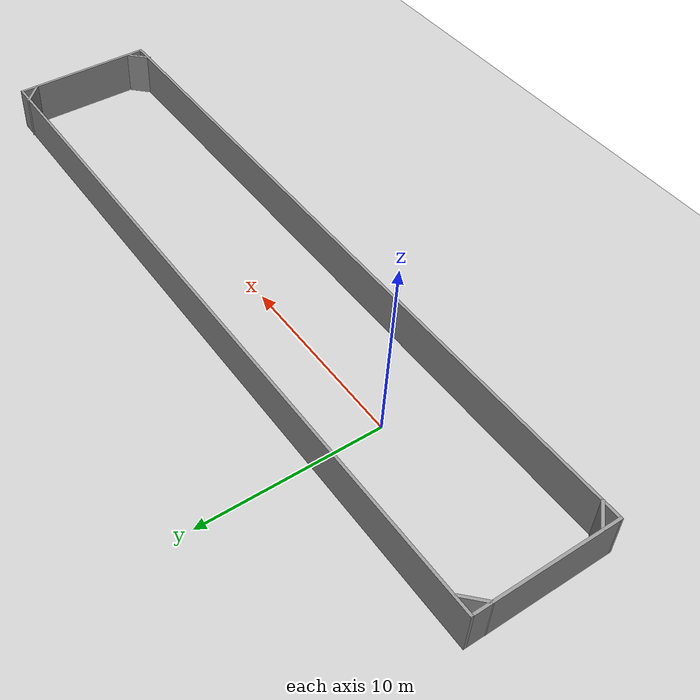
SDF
<sdf version="1.6">
 <world name="default">
  <light name="sun" type="directional">
   <pose>0 0 10 0 -0 0</pose>
   <diffuse>0.8 0.8 0.8 1</diffuse>
   <specular>0.2 0.2 0.2 1</specular>
   <attenuation>
    <range>1000</range>
    <constant>0.9</constant>
    <linear>0.01</linear>
    <quadratic>0.001</quadratic>
   </attenuation>
   <direction>-0.5 0.1 -0.9</direction>
  </light>
  <model name="ground_plane">
   <static>1</static>
   <link name="link">
    <collision name="collision">
     <geometry><plane><normal>0 0 1</normal><size>100 100</size></plane></geometry>
     <surface><friction><ode><mu>100</mu><mu2>50</mu2></ode></friction></surface>
    </collision>
    <visual name="visual">
     <cast_shadows>0</cast_shadows>
     <geometry><plane><normal>0 0 1</normal><size>100 100</size></plane></geometry>
     <material>
      <script><uri>file://media/materials/scripts/gazebo.material</uri><name>Gazebo/Grey</name></script>
     </material>
    </visual>
   </link>
  </model>
  <gravity>0 0 -9.8</gravity>
  <magnetic_field>6e-06 2.3e-05 -4.2e-05</magnetic_field>
  <atmosphere type="adiabatic"/>
  <physics name="default_physics" default="0" type="ode">
   <max_step_size>0.001</max_step_size>
   <real_time_factor>1</real_time_factor>
   <real_time_update_rate>1000</real_time_update_rate>
  </physics>
  <scene><ambient>0.4 0.4 0.4 1</ambient><background>0.7 0.7 0.7 1</background><shadows>1</shadows></scene>
  <audio><device>default</device></audio>
  <spherical_coordinates>
   <surface_model>EARTH_WGS84</surface_model>
   <latitude_deg>0</latitude_deg>
   <longitude_deg>0</longitude_deg>
   <elevation>0</elevation>
   <heading_deg>0</heading_deg>
  </spherical_coordinates>
  <model name="Untitled_0">
   <pose>9.64644 -0.047183 -0 0 -0 0</pose>
   <link name="Wall_10">
    <collision name="Wall_10_Collision">
     <geometry><box><size>40.25 0.15 2.5</size></box></geometry>
     <pose>0 0 1.25 0 -0 0</pose>
    </collision>
    <visual name="Wall_10_Visual">
     <pose>0 0 1.25 0 -0 0</pose>
     <geometry><box><size>40.25 0.15 2.5</size></box></geometry>
     <material>
      <script><uri>file://media/materials/scripts/gazebo.material</uri><name>Gazebo/Grey</name></script>
      <ambient>1 1 1 1</ambient>
     </material>
     <meta><layer>0</layer></meta>
    </visual>
    <pose>0.009873 -3.9186 0 0 -0 3.14159</pose>
   </link>
   <link name="Wall_11">
    <collision name="Wall_11_Collision">
     <geometry><box><size>8 0.15 2.5</size></box></geometry>
     <pose>0 0 1.25 0 -0 0</pose>
    </collision>
    <visual name="Wall_11_Visual">
     <pose>0 0 1.25 0 -0 0</pose>
     <geometry><box><size>8 0.15 2.5</size></box></geometry>
     <material>
      <script><uri>file://media/materials/scripts/gazebo.material</uri><name>Gazebo/Grey</name></script>
      <ambient>1 1 1 1</ambient>
     </material>
     <meta><layer>0</layer></meta>
    </visual>
    <pose>-20.0401 0.006396 0 0 -0 1.5708</pose>
   </link>
   <link name="Wall_13">
    <collision name="Wall_13_Collision">
     <geometry><box><size>1.5 0.15 2.5</size></box></geometry>
     <pose>0 0 1.25 0 -0 0</pose>
    </collision>
    <visual name="Wall_13_Visual">
     <pose>0 0 1.25 0 -0 0</pose>
     <geometry><box><size>1.5 0.15 2.5</size></box></geometry>
     <material>
      <script><uri>file://media/materials/scripts/gazebo.material</uri><name>Gazebo/Grey</name></script>
      <ambient>1 1 1 1</ambient>
     </material>
     <meta><layer>0</layer></meta>
    </visual>
    <pose>-19.5227 -3.4252 0 0 -0 -0.785398</pose>
   </link>
   <link name="Wall_18">
    <collision name="Wall_18_Collision">
     <geometry><box><size>1.5 0.15 2.5</size></box></geometry>
     <pose>0 0 1.25 0 -0 0</pose>
    </collision>
    <visual name="Wall_18_Visual">
     <pose>0 0 1.25 0 -0 0</pose>
     <geometry><box><size>1.5 0.15 2.5</size></box></geometry>
     <material>
      <script><uri>file://media/materials/scripts/gazebo.material</uri><name>Gazebo/Grey</name></script>
      <ambient>1 1 1 1</ambient>
     </material>
     <meta><layer>0</layer></meta>
    </visual>
    <pose>-19.5615 3.37067 0 0 -0 0.785398</pose>
   </link>
   <link name="Wall_22">
    <collision name="Wall_22_Collision">
     <geometry><box><size>1.5 0.15 2.5</size></box></geometry>
     <pose>0 0 1.25 0 -0 0</pose>
    </collision>
    <visual name="Wall_22_Visual">
     <pose>0 0 1.25 0 -0 0</pose>
     <geometry><box><size>1.5 0.15 2.5</size></box></geometry>
     <material>
      <script><uri>file://media/materials/scripts/gazebo.material</uri><name>Gazebo/Grey</name></script>
      <ambient>1 1 1 1</ambient>
     </material>
     <meta><layer>0</layer></meta>
    </visual>
    <pose>19.5615 3.48342 0 0 -0 -0.785398</pose>
   </link>
   <link name="Wall_25">
    <collision name="Wall_25_Collision">
     <geometry><box><size>1.5 0.15 2.5</size></box></geometry>
     <pose>0 0 1.25 0 -0 0</pose>
    </collision>
    <visual name="Wall_25_Visual">
     <pose>0 0 1.25 0 -0 0</pose>
     <geometry><box><size>1.5 0.15 2.5</size></box></geometry>
     <material>
      <script><uri>file://media/materials/scripts/gazebo.material</uri><name>Gazebo/Grey</name></script>
      <ambient>1 1 1 1</ambient>
     </material>
     <meta><layer>0</layer></meta>
    </visual>
    <pose>19.5578 -3.48342 0 0 -0 -2.35619</pose>
   </link>
   <link name="Wall_8">
    <collision name="Wall_8_Collision">
     <geometry><box><size>40.25 0.15 2.5</size></box></geometry>
     <pose>0 0 1.25 0 -0 0</pose>
    </collision>
    <visual name="Wall_8_Visual">
     <pose>0 0 1.25 0 -0 0</pose>
     <geometry><box><size>40.25 0.15 2.5</size></box></geometry>
     <material>
      <script><uri>file://media/materials/scripts/gazebo.material</uri><name>Gazebo/Grey</name></script>
      <ambient>1 1 1 1</ambient>
     </material>
     <meta><layer>0</layer></meta>
    </visual>
    <pose>0.009873 3.9314 0 0 -0 0</pose>
   </link>
   <link name="Wall_9">
    <collision name="Wall_9_Collision">
     <geometry><box><size>8 0.15 2.5</size></box></geometry>
     <pose>0 0 1.25 0 -0 0</pose>
    </collision>
    <visual name="Wall_9_Visual">
     <pose>0 0 1.25 0 -0 0</pose>
     <geometry><box><size>8 0.15 2.5</size></box></geometry>
     <material>
      <script><uri>file://media/materials/scripts/gazebo.material</uri><name>Gazebo/Grey</name></script>
      <ambient>1 1 1 1</ambient>
     </material>
     <meta><layer>0</layer></meta>
    </visual>
    <pose>20.0599 0.006396 0 0 -0 -1.5708</pose>
   </link>
   <static>1</static>
  </model>
 </world>
</sdf>
